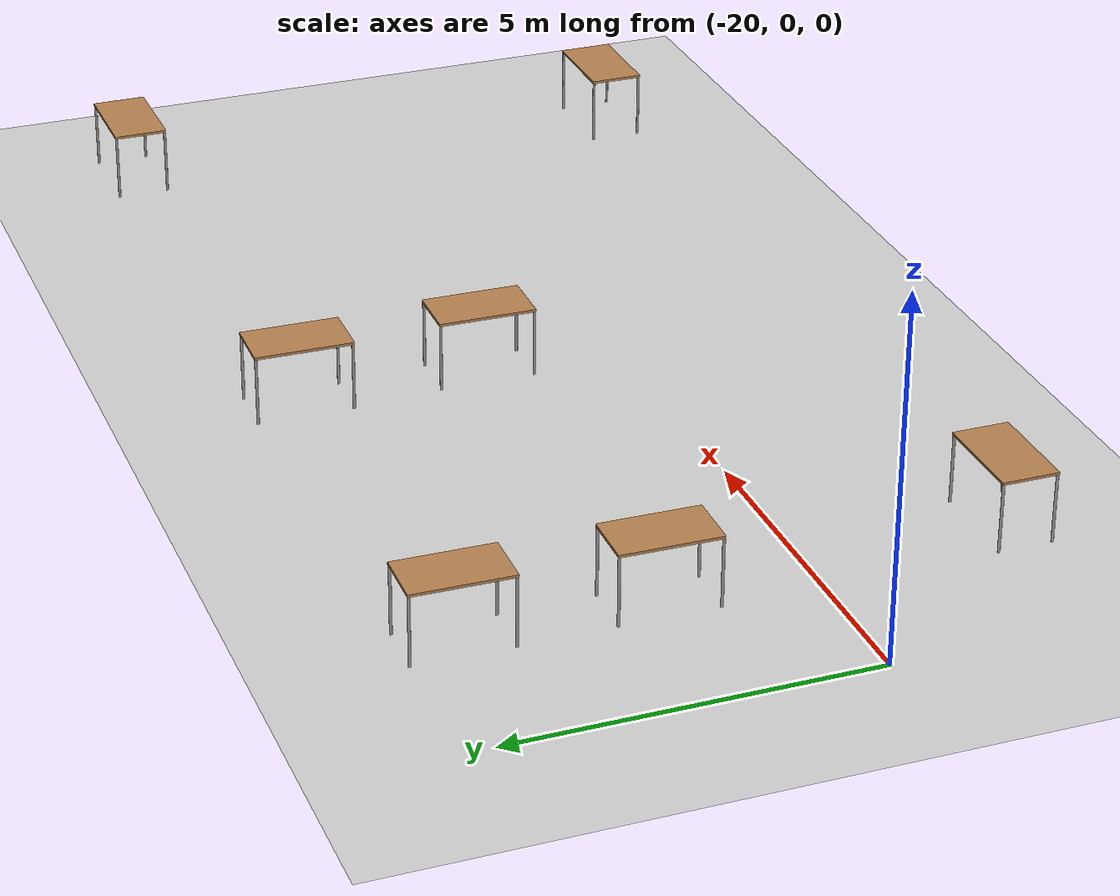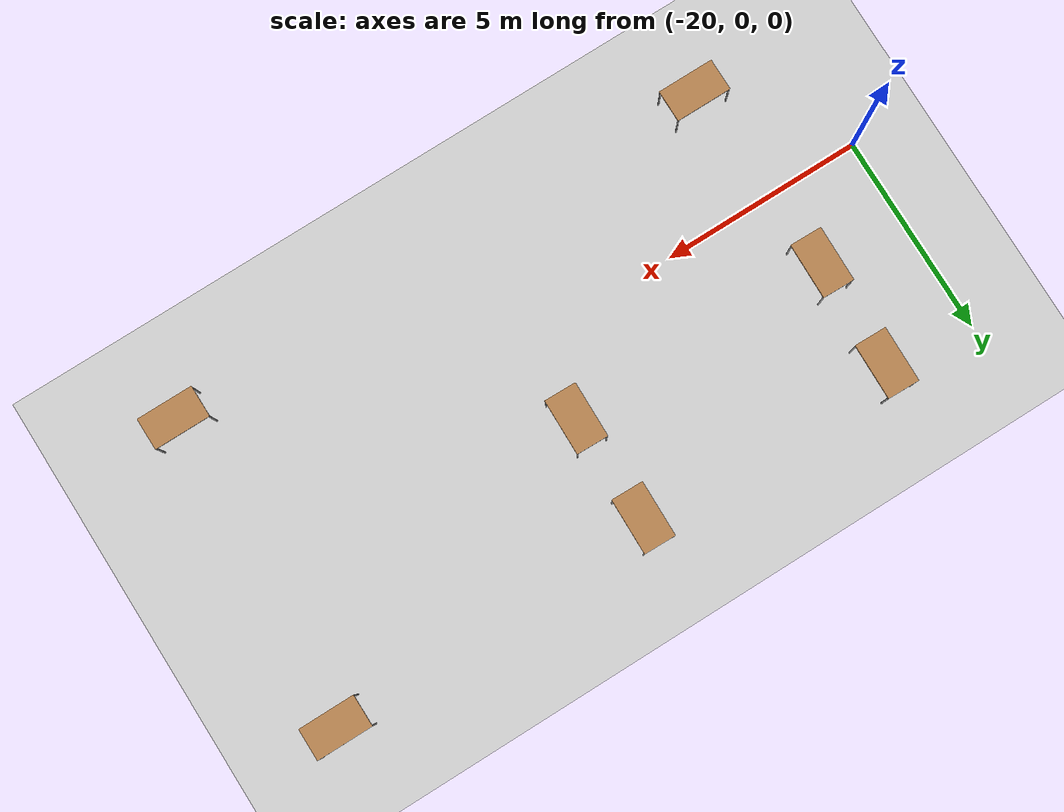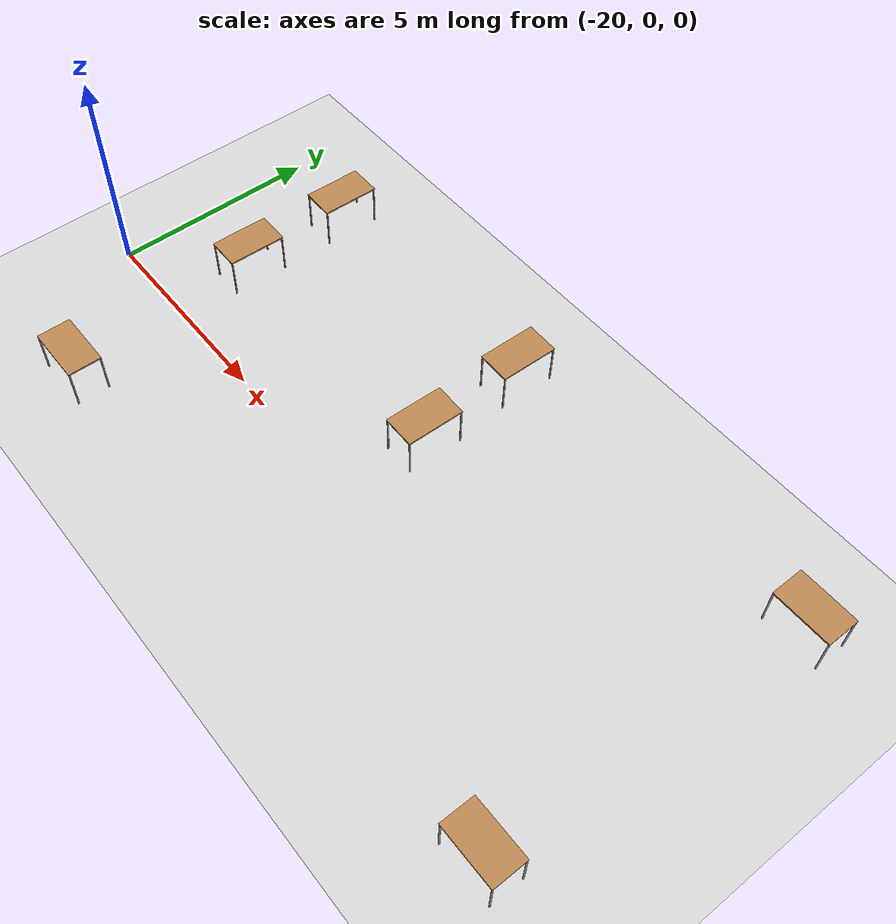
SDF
<sdf version="1.6">
 <world name="default">
  <model name="ground_plane">
   <static>1</static>
   <link name="link">
    <collision name="collision">
     <geometry><plane><normal>0 0 1</normal><size>100 100</size></plane></geometry>
     <surface><friction><ode><mu>100</mu><mu2>50</mu2></ode></friction></surface>
    </collision>
    <visual name="visual">
     <cast_shadows>0</cast_shadows>
     <geometry><plane><normal>0 0 1</normal><size>100 100</size></plane></geometry>
     <material>
      <script><uri>file://media/materials/scripts/gazebo.material</uri><name>Gazebo/Grey</name></script>
     </material>
    </visual>
   </link>
  </model>
  <model name="table_clone_6">
   <static>0</static>
   <link name="link">
    <collision name="surface">
     <pose>0 0 1 0 -0 0</pose>
     <geometry><box><size>1.5 0.8 0.03</size></box></geometry>
     <surface><friction><ode><mu>0.6</mu><mu2>0.6</mu2></ode></friction></surface>
    </collision>
    <visual name="visual1">
     <pose>0 0 1 0 -0 0</pose>
     <geometry><box><size>1.4 0.8 0.04</size></box></geometry>
     <material>
      <script><uri>file://media/materials/scripts/gazebo.material</uri><name>Gazebo/Wood</name></script>
     </material>
    </visual>
    <collision name="front_left_leg">
     <pose>0.68 0.38 0.5 0 -0 0</pose>
     <geometry><cylinder><radius>0.02</radius><length>1</length></cylinder></geometry>
    </collision>
    <visual name="front_left_leg">
     <pose>0.68 0.38 0.5 0 -0 0</pose>
     <geometry><cylinder><radius>0.02</radius><length>1</length></cylinder></geometry>
     <material>
      <script><uri>file://media/materials/scripts/gazebo.material</uri><name>Gazebo/Grey</name></script>
     </material>
    </visual>
    <collision name="front_right_leg">
     <pose>0.68 -0.38 0.5 0 -0 0</pose>
     <geometry><cylinder><radius>0.02</radius><length>1</length></cylinder></geometry>
    </collision>
    <visual name="front_right_leg">
     <pose>0.68 -0.38 0.5 0 -0 0</pose>
     <geometry><cylinder><radius>0.02</radius><length>1</length></cylinder></geometry>
     <material>
      <script><uri>file://media/materials/scripts/gazebo.material</uri><name>Gazebo/Grey</name></script>
     </material>
    </visual>
    <collision name="back_right_leg">
     <pose>-0.68 -0.38 0.5 0 -0 0</pose>
     <geometry><cylinder><radius>0.02</radius><length>1</length></cylinder></geometry>
    </collision>
    <visual name="back_right_leg">
     <pose>-0.68 -0.38 0.5 0 -0 0</pose>
     <geometry><cylinder><radius>0.02</radius><length>1</length></cylinder></geometry>
     <material>
      <script><uri>file://media/materials/scripts/gazebo.material</uri><name>Gazebo/Grey</name></script>
     </material>
    </visual>
    <collision name="back_left_leg">
     <pose>-0.68 0.38 0.5 0 -0 0</pose>
     <geometry><cylinder><radius>0.02</radius><length>1</length></cylinder></geometry>
    </collision>
    <visual name="back_left_leg">
     <pose>-0.68 0.38 0.5 0 -0 0</pose>
     <geometry><cylinder><radius>0.02</radius><length>1</length></cylinder></geometry>
     <material>
      <script><uri>file://media/materials/scripts/gazebo.material</uri><name>Gazebo/Grey</name></script>
     </material>
    </visual>
    <inertial>
     <inertia><ixx>1</ixx><ixy>0</ixy><ixz>0</ixz><iyy>1</iyy><iyz>0</iyz><izz>1</izz></inertia>
     <mass>1</mass>
    </inertial>
   </link>
   <pose>-3.13187 5.01999 -1e-06 0 1e-06 0</pose>
  </model>
  <model name="table_clone_8">
   <static>0</static>
   <link name="link">
    <collision name="surface">
     <pose>0 0 1 0 -0 0</pose>
     <geometry><box><size>1.5 0.8 0.03</size></box></geometry>
     <surface><friction><ode><mu>0.6</mu><mu2>0.6</mu2></ode></friction></surface>
    </collision>
    <visual name="visual1">
     <pose>0 0 1 0 -0 0</pose>
     <geometry><box><size>1.4 0.8 0.04</size></box></geometry>
     <material>
      <script><uri>file://media/materials/scripts/gazebo.material</uri><name>Gazebo/Wood</name></script>
     </material>
    </visual>
    <collision name="front_left_leg">
     <pose>0.68 0.38 0.5 0 -0 0</pose>
     <geometry><cylinder><radius>0.02</radius><length>1</length></cylinder></geometry>
    </collision>
    <visual name="front_left_leg">
     <pose>0.68 0.38 0.5 0 -0 0</pose>
     <geometry><cylinder><radius>0.02</radius><length>1</length></cylinder></geometry>
     <material>
      <script><uri>file://media/materials/scripts/gazebo.material</uri><name>Gazebo/Grey</name></script>
     </material>
    </visual>
    <collision name="front_right_leg">
     <pose>0.68 -0.38 0.5 0 -0 0</pose>
     <geometry><cylinder><radius>0.02</radius><length>1</length></cylinder></geometry>
    </collision>
    <visual name="front_right_leg">
     <pose>0.68 -0.38 0.5 0 -0 0</pose>
     <geometry><cylinder><radius>0.02</radius><length>1</length></cylinder></geometry>
     <material>
      <script><uri>file://media/materials/scripts/gazebo.material</uri><name>Gazebo/Grey</name></script>
     </material>
    </visual>
    <collision name="back_right_leg">
     <pose>-0.68 -0.38 0.5 0 -0 0</pose>
     <geometry><cylinder><radius>0.02</radius><length>1</length></cylinder></geometry>
    </collision>
    <visual name="back_right_leg">
     <pose>-0.68 -0.38 0.5 0 -0 0</pose>
     <geometry><cylinder><radius>0.02</radius><length>1</length></cylinder></geometry>
     <material>
      <script><uri>file://media/materials/scripts/gazebo.material</uri><name>Gazebo/Grey</name></script>
     </material>
    </visual>
    <collision name="back_left_leg">
     <pose>-0.68 0.38 0.5 0 -0 0</pose>
     <geometry><cylinder><radius>0.02</radius><length>1</length></cylinder></geometry>
    </collision>
    <visual name="back_left_leg">
     <pose>-0.68 0.38 0.5 0 -0 0</pose>
     <geometry><cylinder><radius>0.02</radius><length>1</length></cylinder></geometry>
     <material>
      <script><uri>file://media/materials/scripts/gazebo.material</uri><name>Gazebo/Grey</name></script>
     </material>
    </visual>
    <inertial>
     <inertia><ixx>1</ixx><ixy>0</ixy><ixz>0</ixz><iyy>1</iyy><iyz>0</iyz><izz>1</izz></inertia>
     <mass>1</mass>
    </inertial>
   </link>
   <pose>-17.6763 4.70662 -8e-06 0 -1e-06 -1.58704</pose>
  </model>
  <model name="table_clone_8_clone">
   <static>0</static>
   <link name="link">
    <collision name="surface">
     <pose>0 0 1 0 -0 0</pose>
     <geometry><box><size>1.5 0.8 0.03</size></box></geometry>
     <surface><friction><ode><mu>0.6</mu><mu2>0.6</mu2></ode></friction></surface>
    </collision>
    <visual name="visual1">
     <pose>0 0 1 0 -0 0</pose>
     <geometry><box><size>1.4 0.8 0.04</size></box></geometry>
     <material>
      <script><uri>file://media/materials/scripts/gazebo.material</uri><name>Gazebo/Wood</name></script>
     </material>
    </visual>
    <collision name="front_left_leg">
     <pose>0.68 0.38 0.5 0 -0 0</pose>
     <geometry><cylinder><radius>0.02</radius><length>1</length></cylinder></geometry>
    </collision>
    <visual name="front_left_leg">
     <pose>0.68 0.38 0.5 0 -0 0</pose>
     <geometry><cylinder><radius>0.02</radius><length>1</length></cylinder></geometry>
     <material>
      <script><uri>file://media/materials/scripts/gazebo.material</uri><name>Gazebo/Grey</name></script>
     </material>
    </visual>
    <collision name="front_right_leg">
     <pose>0.68 -0.38 0.5 0 -0 0</pose>
     <geometry><cylinder><radius>0.02</radius><length>1</length></cylinder></geometry>
    </collision>
    <visual name="front_right_leg">
     <pose>0.68 -0.38 0.5 0 -0 0</pose>
     <geometry><cylinder><radius>0.02</radius><length>1</length></cylinder></geometry>
     <material>
      <script><uri>file://media/materials/scripts/gazebo.material</uri><name>Gazebo/Grey</name></script>
     </material>
    </visual>
    <collision name="back_right_leg">
     <pose>-0.68 -0.38 0.5 0 -0 0</pose>
     <geometry><cylinder><radius>0.02</radius><length>1</length></cylinder></geometry>
    </collision>
    <visual name="back_right_leg">
     <pose>-0.68 -0.38 0.5 0 -0 0</pose>
     <geometry><cylinder><radius>0.02</radius><length>1</length></cylinder></geometry>
     <material>
      <script><uri>file://media/materials/scripts/gazebo.material</uri><name>Gazebo/Grey</name></script>
     </material>
    </visual>
    <collision name="back_left_leg">
     <pose>-0.68 0.38 0.5 0 -0 0</pose>
     <geometry><cylinder><radius>0.02</radius><length>1</length></cylinder></geometry>
    </collision>
    <visual name="back_left_leg">
     <pose>-0.68 0.38 0.5 0 -0 0</pose>
     <geometry><cylinder><radius>0.02</radius><length>1</length></cylinder></geometry>
     <material>
      <script><uri>file://media/materials/scripts/gazebo.material</uri><name>Gazebo/Grey</name></script>
     </material>
    </visual>
    <inertial>
     <inertia><ixx>1</ixx><ixy>0</ixy><ixz>0</ixz><iyy>1</iyy><iyz>0</iyz><izz>1</izz></inertia>
     <mass>1</mass>
    </inertial>
   </link>
   <pose>-17.6967 2.03514 -8e-06 0 0 -1.58704</pose>
  </model>
  <model name="table_clone_8_clone_0">
   <static>0</static>
   <link name="link">
    <collision name="surface">
     <pose>0 0 1 0 -0 0</pose>
     <geometry><box><size>1.5 0.8 0.03</size></box></geometry>
     <surface><friction><ode><mu>0.6</mu><mu2>0.6</mu2></ode></friction></surface>
    </collision>
    <visual name="visual1">
     <pose>0 0 1 0 -0 0</pose>
     <geometry><box><size>1.4 0.8 0.04</size></box></geometry>
     <material>
      <script><uri>file://media/materials/scripts/gazebo.material</uri><name>Gazebo/Wood</name></script>
     </material>
    </visual>
    <collision name="front_left_leg">
     <pose>0.68 0.38 0.5 0 -0 0</pose>
     <geometry><cylinder><radius>0.02</radius><length>1</length></cylinder></geometry>
    </collision>
    <visual name="front_left_leg">
     <pose>0.68 0.38 0.5 0 -0 0</pose>
     <geometry><cylinder><radius>0.02</radius><length>1</length></cylinder></geometry>
     <material>
      <script><uri>file://media/materials/scripts/gazebo.material</uri><name>Gazebo/Grey</name></script>
     </material>
    </visual>
    <collision name="front_right_leg">
     <pose>0.68 -0.38 0.5 0 -0 0</pose>
     <geometry><cylinder><radius>0.02</radius><length>1</length></cylinder></geometry>
    </collision>
    <visual name="front_right_leg">
     <pose>0.68 -0.38 0.5 0 -0 0</pose>
     <geometry><cylinder><radius>0.02</radius><length>1</length></cylinder></geometry>
     <material>
      <script><uri>file://media/materials/scripts/gazebo.material</uri><name>Gazebo/Grey</name></script>
     </material>
    </visual>
    <collision name="back_right_leg">
     <pose>-0.68 -0.38 0.5 0 -0 0</pose>
     <geometry><cylinder><radius>0.02</radius><length>1</length></cylinder></geometry>
    </collision>
    <visual name="back_right_leg">
     <pose>-0.68 -0.38 0.5 0 -0 0</pose>
     <geometry><cylinder><radius>0.02</radius><length>1</length></cylinder></geometry>
     <material>
      <script><uri>file://media/materials/scripts/gazebo.material</uri><name>Gazebo/Grey</name></script>
     </material>
    </visual>
    <collision name="back_left_leg">
     <pose>-0.68 0.38 0.5 0 -0 0</pose>
     <geometry><cylinder><radius>0.02</radius><length>1</length></cylinder></geometry>
    </collision>
    <visual name="back_left_leg">
     <pose>-0.68 0.38 0.5 0 -0 0</pose>
     <geometry><cylinder><radius>0.02</radius><length>1</length></cylinder></geometry>
     <material>
      <script><uri>file://media/materials/scripts/gazebo.material</uri><name>Gazebo/Grey</name></script>
     </material>
    </visual>
    <inertial>
     <inertia><ixx>1</ixx><ixy>0</ixy><ixz>0</ixz><iyy>1</iyy><iyz>0</iyz><izz>1</izz></inertia>
     <mass>1</mass>
    </inertial>
   </link>
   <pose>-11.2467 4.73005 -8e-06 0 -1e-06 -1.58704</pose>
  </model>
  <model name="table_clone_8_clone_1">
   <static>0</static>
   <link name="link">
    <collision name="surface">
     <pose>0 0 1 0 -0 0</pose>
     <geometry><box><size>1.5 0.8 0.03</size></box></geometry>
     <surface><friction><ode><mu>0.6</mu><mu2>0.6</mu2></ode></friction></surface>
    </collision>
    <visual name="visual1">
     <pose>0 0 1 0 -0 0</pose>
     <geometry><box><size>1.4 0.8 0.04</size></box></geometry>
     <material>
      <script><uri>file://media/materials/scripts/gazebo.material</uri><name>Gazebo/Wood</name></script>
     </material>
    </visual>
    <collision name="front_left_leg">
     <pose>0.68 0.38 0.5 0 -0 0</pose>
     <geometry><cylinder><radius>0.02</radius><length>1</length></cylinder></geometry>
    </collision>
    <visual name="front_left_leg">
     <pose>0.68 0.38 0.5 0 -0 0</pose>
     <geometry><cylinder><radius>0.02</radius><length>1</length></cylinder></geometry>
     <material>
      <script><uri>file://media/materials/scripts/gazebo.material</uri><name>Gazebo/Grey</name></script>
     </material>
    </visual>
    <collision name="front_right_leg">
     <pose>0.68 -0.38 0.5 0 -0 0</pose>
     <geometry><cylinder><radius>0.02</radius><length>1</length></cylinder></geometry>
    </collision>
    <visual name="front_right_leg">
     <pose>0.68 -0.38 0.5 0 -0 0</pose>
     <geometry><cylinder><radius>0.02</radius><length>1</length></cylinder></geometry>
     <material>
      <script><uri>file://media/materials/scripts/gazebo.material</uri><name>Gazebo/Grey</name></script>
     </material>
    </visual>
    <collision name="back_right_leg">
     <pose>-0.68 -0.38 0.5 0 -0 0</pose>
     <geometry><cylinder><radius>0.02</radius><length>1</length></cylinder></geometry>
    </collision>
    <visual name="back_right_leg">
     <pose>-0.68 -0.38 0.5 0 -0 0</pose>
     <geometry><cylinder><radius>0.02</radius><length>1</length></cylinder></geometry>
     <material>
      <script><uri>file://media/materials/scripts/gazebo.material</uri><name>Gazebo/Grey</name></script>
     </material>
    </visual>
    <collision name="back_left_leg">
     <pose>-0.68 0.38 0.5 0 -0 0</pose>
     <geometry><cylinder><radius>0.02</radius><length>1</length></cylinder></geometry>
    </collision>
    <visual name="back_left_leg">
     <pose>-0.68 0.38 0.5 0 -0 0</pose>
     <geometry><cylinder><radius>0.02</radius><length>1</length></cylinder></geometry>
     <material>
      <script><uri>file://media/materials/scripts/gazebo.material</uri><name>Gazebo/Grey</name></script>
     </material>
    </visual>
    <inertial>
     <inertia><ixx>1</ixx><ixy>0</ixy><ixz>0</ixz><iyy>1</iyy><iyz>0</iyz><izz>1</izz></inertia>
     <mass>1</mass>
    </inertial>
   </link>
   <pose>-11.1653 2.07715 -8e-06 0 0 -1.58704</pose>
  </model>
  <model name="table_clone_6_clone">
   <static>0</static>
   <link name="link">
    <collision name="surface">
     <pose>0 0 1 0 -0 0</pose>
     <geometry><box><size>1.5 0.8 0.03</size></box></geometry>
     <surface><friction><ode><mu>0.6</mu><mu2>0.6</mu2></ode></friction></surface>
    </collision>
    <visual name="visual1">
     <pose>0 0 1 0 -0 0</pose>
     <geometry><box><size>1.4 0.8 0.04</size></box></geometry>
     <material>
      <script><uri>file://media/materials/scripts/gazebo.material</uri><name>Gazebo/Wood</name></script>
     </material>
    </visual>
    <collision name="front_left_leg">
     <pose>0.68 0.38 0.5 0 -0 0</pose>
     <geometry><cylinder><radius>0.02</radius><length>1</length></cylinder></geometry>
    </collision>
    <visual name="front_left_leg">
     <pose>0.68 0.38 0.5 0 -0 0</pose>
     <geometry><cylinder><radius>0.02</radius><length>1</length></cylinder></geometry>
     <material>
      <script><uri>file://media/materials/scripts/gazebo.material</uri><name>Gazebo/Grey</name></script>
     </material>
    </visual>
    <collision name="front_right_leg">
     <pose>0.68 -0.38 0.5 0 -0 0</pose>
     <geometry><cylinder><radius>0.02</radius><length>1</length></cylinder></geometry>
    </collision>
    <visual name="front_right_leg">
     <pose>0.68 -0.38 0.5 0 -0 0</pose>
     <geometry><cylinder><radius>0.02</radius><length>1</length></cylinder></geometry>
     <material>
      <script><uri>file://media/materials/scripts/gazebo.material</uri><name>Gazebo/Grey</name></script>
     </material>
    </visual>
    <collision name="back_right_leg">
     <pose>-0.68 -0.38 0.5 0 -0 0</pose>
     <geometry><cylinder><radius>0.02</radius><length>1</length></cylinder></geometry>
    </collision>
    <visual name="back_right_leg">
     <pose>-0.68 -0.38 0.5 0 -0 0</pose>
     <geometry><cylinder><radius>0.02</radius><length>1</length></cylinder></geometry>
     <material>
      <script><uri>file://media/materials/scripts/gazebo.material</uri><name>Gazebo/Grey</name></script>
     </material>
    </visual>
    <collision name="back_left_leg">
     <pose>-0.68 0.38 0.5 0 -0 0</pose>
     <geometry><cylinder><radius>0.02</radius><length>1</length></cylinder></geometry>
    </collision>
    <visual name="back_left_leg">
     <pose>-0.68 0.38 0.5 0 -0 0</pose>
     <geometry><cylinder><radius>0.02</radius><length>1</length></cylinder></geometry>
     <material>
      <script><uri>file://media/materials/scripts/gazebo.material</uri><name>Gazebo/Grey</name></script>
     </material>
    </visual>
    <inertial>
     <inertia><ixx>1</ixx><ixy>0</ixy><ixz>0</ixz><iyy>1</iyy><iyz>0</iyz><izz>1</izz></inertia>
     <mass>1</mass>
    </inertial>
   </link>
   <pose>-17.4133 -2.82068 -9e-06 0 -1e-06 0</pose>
  </model>
  <model name="table_clone_6_clone_0">
   <static>0</static>
   <link name="link">
    <collision name="surface">
     <pose>0 0 1 0 -0 0</pose>
     <geometry><box><size>1.5 0.8 0.03</size></box></geometry>
     <surface><friction><ode><mu>0.6</mu><mu2>0.6</mu2></ode></friction></surface>
    </collision>
    <visual name="visual1">
     <pose>0 0 1 0 -0 0</pose>
     <geometry><box><size>1.4 0.8 0.04</size></box></geometry>
     <material>
      <script><uri>file://media/materials/scripts/gazebo.material</uri><name>Gazebo/Wood</name></script>
     </material>
    </visual>
    <collision name="front_left_leg">
     <pose>0.68 0.38 0.5 0 -0 0</pose>
     <geometry><cylinder><radius>0.02</radius><length>1</length></cylinder></geometry>
    </collision>
    <visual name="front_left_leg">
     <pose>0.68 0.38 0.5 0 -0 0</pose>
     <geometry><cylinder><radius>0.02</radius><length>1</length></cylinder></geometry>
     <material>
      <script><uri>file://media/materials/scripts/gazebo.material</uri><name>Gazebo/Grey</name></script>
     </material>
    </visual>
    <collision name="front_right_leg">
     <pose>0.68 -0.38 0.5 0 -0 0</pose>
     <geometry><cylinder><radius>0.02</radius><length>1</length></cylinder></geometry>
    </collision>
    <visual name="front_right_leg">
     <pose>0.68 -0.38 0.5 0 -0 0</pose>
     <geometry><cylinder><radius>0.02</radius><length>1</length></cylinder></geometry>
     <material>
      <script><uri>file://media/materials/scripts/gazebo.material</uri><name>Gazebo/Grey</name></script>
     </material>
    </visual>
    <collision name="back_right_leg">
     <pose>-0.68 -0.38 0.5 0 -0 0</pose>
     <geometry><cylinder><radius>0.02</radius><length>1</length></cylinder></geometry>
    </collision>
    <visual name="back_right_leg">
     <pose>-0.68 -0.38 0.5 0 -0 0</pose>
     <geometry><cylinder><radius>0.02</radius><length>1</length></cylinder></geometry>
     <material>
      <script><uri>file://media/materials/scripts/gazebo.material</uri><name>Gazebo/Grey</name></script>
     </material>
    </visual>
    <collision name="back_left_leg">
     <pose>-0.68 0.38 0.5 0 -0 0</pose>
     <geometry><cylinder><radius>0.02</radius><length>1</length></cylinder></geometry>
    </collision>
    <visual name="back_left_leg">
     <pose>-0.68 0.38 0.5 0 -0 0</pose>
     <geometry><cylinder><radius>0.02</radius><length>1</length></cylinder></geometry>
     <material>
      <script><uri>file://media/materials/scripts/gazebo.material</uri><name>Gazebo/Grey</name></script>
     </material>
    </visual>
    <inertial>
     <inertia><ixx>1</ixx><ixy>0</ixy><ixz>0</ixz><iyy>1</iyy><iyz>0</iyz><izz>1</izz></inertia>
     <mass>1</mass>
    </inertial>
   </link>
   <pose>-3.61369 -2.68944 -1e-06 -1e-06 1e-06 0</pose>
  </model>
 </world>
</sdf>
